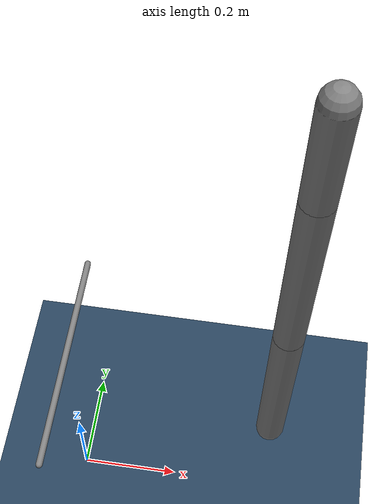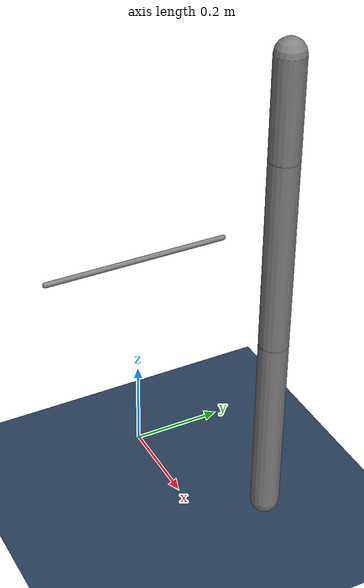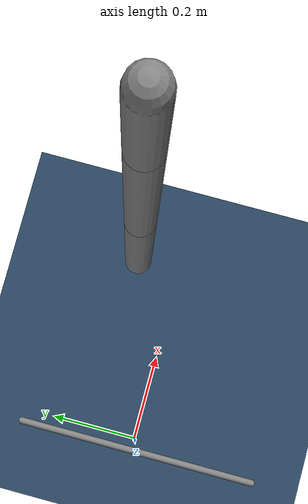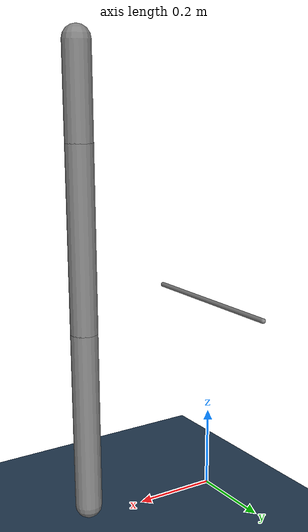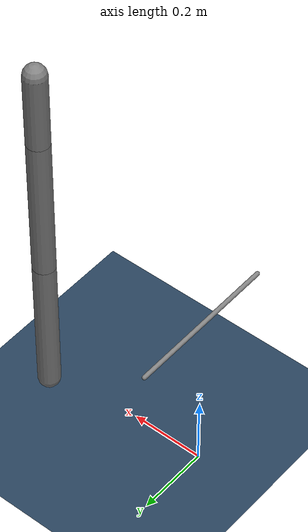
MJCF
<mujoco model="HumanRobotPhysicalContact">

    <!-- 编译器选项 -->
    <compiler meshdir="asset" texturedir="asset" autolimits="true" angle="radian" />

    <!-- 0.002 is better-->
    <option timestep="0.002" iterations="100" ls_iterations="50" solver="Newton">
        <flag eulerdamp="enable" />
    </option>

    <!-- 模型统计信息 meansize: 物体的平均大小，用于自动调整渲染和相机设置 -->
    <statistic meansize=".05" center="0 0 0.3" extent="1" />

    <visual>
        <!-- 全局背景/雾颜色和透明度 -->
        <rgba haze="0.15 0.25 0.35 1" />
        <!-- 相关属性扩展：offwidth,离屏渲染的​​分辨率, elevation:相机的​​仰角, azimuth:相机的​​方位角 -->
        <global offwidth="2560" offheight="1440" elevation="-30" azimuth="120" />
        <!-- 渲染质量设置,阴影贴图的分辨率（4096表示高质量阴影） -->
        <quality shadowsize="4096" />
        <!-- 渲染参数设置 -->
        <map stiffness="700" shadowscale="0.5" fogstart="1" fogend="15" zfar="40" haze="1" force="0.1" />
    </visual>

    <asset>
        <texture type="skybox" builtin="gradient" rgb1="0.52734375 0.8046875 0.91796875" rgb2="0 0 0" width="512" height="3072" />
        <texture name="grid" type="2d" builtin="checker" width="512" height="512" rgb1=".1 .2 .3" rgb2=".2 .3 .4" />
        <material name="grid" texture="grid" texrepeat="1 1" texuniform="true" reflectance=".2" />
    </asset>

    <extension>
        <plugin plugin="mujoco.HumanRobotPhysicalContact" />
    </extension>

    <size memory="10M" />

    <worldbody>
        <plugin plugin="mujoco.HumanRobotPhysicalContact">
            <config key="config" value="model/plugin/simplesoft/config_test_model.json" />
        </plugin>

        <light directional="true" diffuse="0.4 0.4 0.4" specular="0.1 0.1 0.1" pos="0 0 5.0" dir="0 0 -1" castshadow="false" />
        <light directional="true" diffuse="0.6 0.6 0.6" specular="0.2 0.2 0.2" pos="0 0 4" dir="0 0 -1" />
        <geom name="ground" type="plane" pos="0 0 0" size="100 100 0.001" quat="1 0 0 0" material="grid" condim="3" contype="1" conaffinity="15" />

        <body name="limb1" pos="0 0 0.49" quat="1 0 0 0">
            <geom name="limb1_capsule" type="capsule"  size="0.006 0.21" quat="0.7071 0.7071 0 0"/>
        </body>

        <body name="rob_link1" pos="0.4 0.1 0.1" quat="1 0 0 0">
            <geom name="rob_link1_capsule" type="capsule" size="0.03 0.2" pos="0 0 0.2"/>
            <joint name="J1" type="hinge" pos="0 0 0" axis="0 1 0" range="-1.5708 1.5708"/>
            <body name="rob_link2" pos="0 0 0.4" quat="1 0 0 0">
                <geom name="rob_link2_capsule" type="capsule" size="0.03 0.2" pos="0 0 0.2"/>
                <joint name="J2" type="hinge" pos="0 0 0" axis="0 1 0" range="-1.5708 1.5708"/>
                <body name="rob_link3" pos="0 0 0.4" quat="1 0 0 0">
                    <geom name="rob_link3_capsule" type="capsule" size="0.03 0.1" pos="0 0 0.1"/>
                    <joint name="J3" type="hinge" pos="0 0 0" axis="0 1 0" range="-1.5708 1.5708"/>
                </body>
            </body>
        </body>

    </worldbody>

    <actuator>
        <position name="J1" joint="J1" ctrllimited="true" ctrlrange="-1.2 0.1" forcelimited="true" forcerange="-1000 1000" kp="1000" kv="20"/>
        <position name="J2" joint="J2" ctrllimited="true" ctrlrange="-0.5 0.1" forcelimited="true" forcerange="-1000 1000" kp="100" kv="5"/>
        <position name="J3" joint="J3" ctrllimited="true" ctrlrange="-1.2 0.1" forcelimited="true" forcerange="-100 100" kp="10" kv="0.2"/>
    </actuator>

</mujoco>
